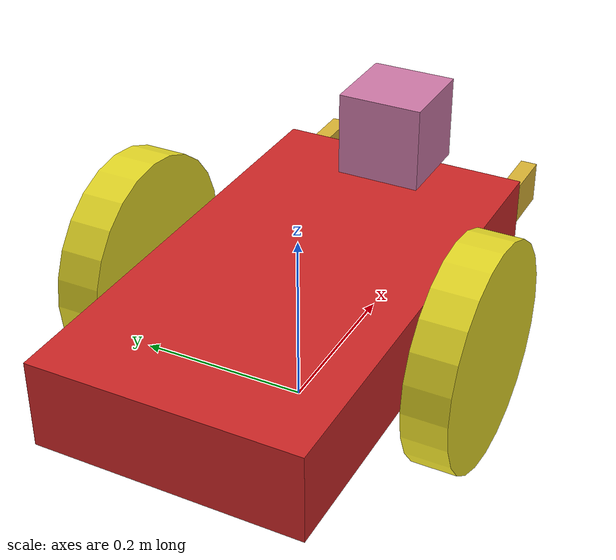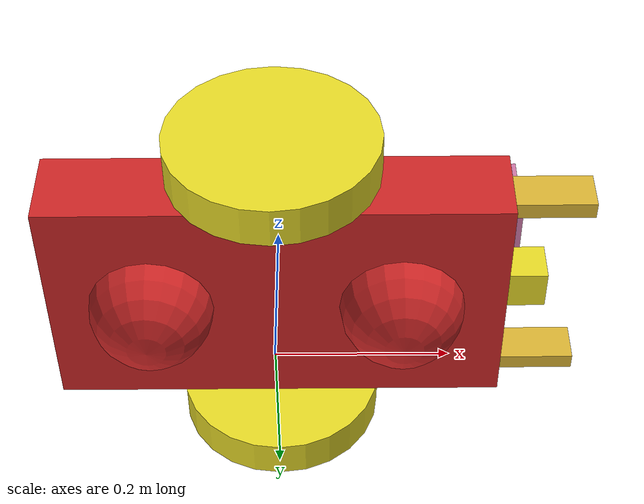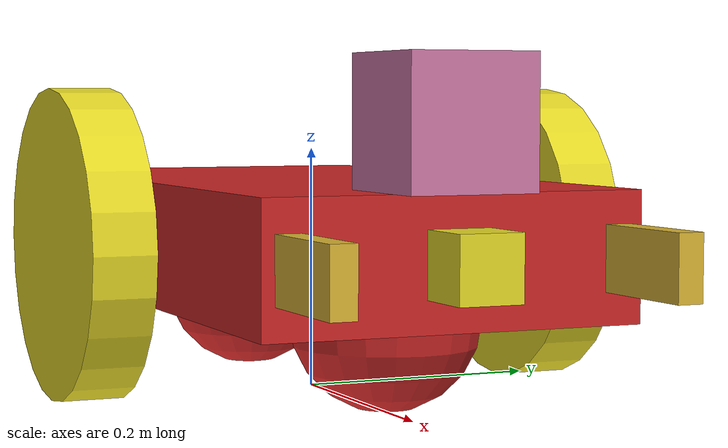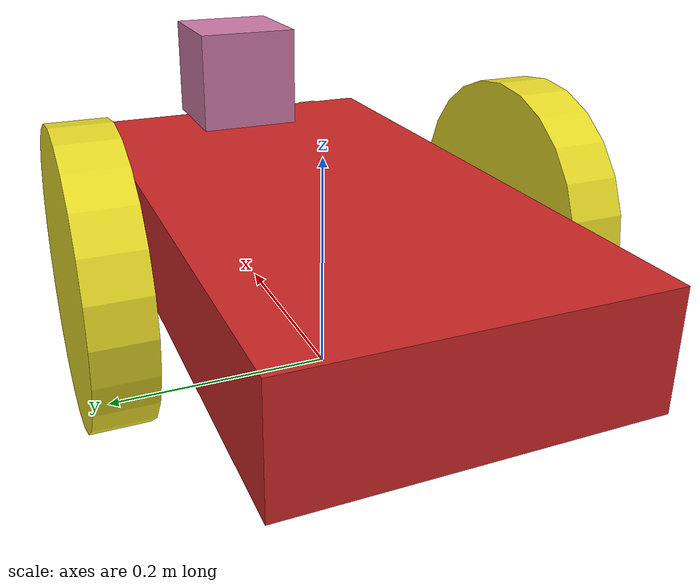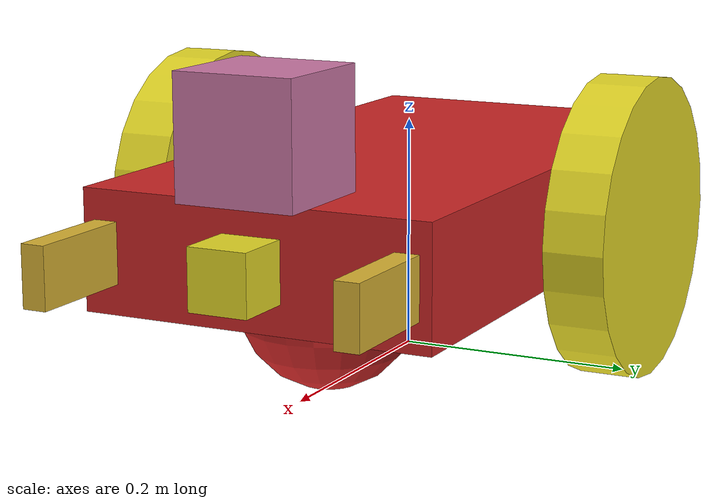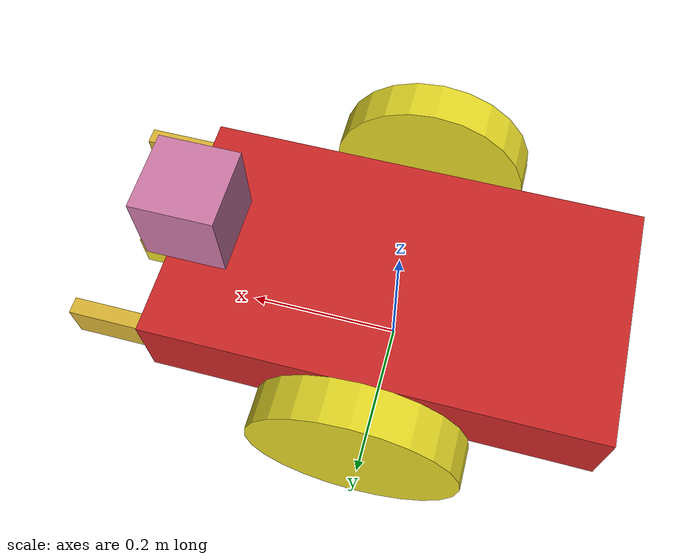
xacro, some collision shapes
<?xml version='1.0'?>

<robot name="my_robot" xmlns:xacro="http://www.ros.org/wiki/xacro">

    <xacro:include filename="$(find my_robot)/urdf/my_robot.gazebo" />

    <gazebo reference="chassis">
        <material>Gazebo/Red</material>
    </gazebo>
    <gazebo reference="left_wheel">
        <material>Gazebo/DarkYellow</material>
    </gazebo>
    <gazebo reference="right_wheel">
        <material>Gazebo/DarkYellow</material>
    </gazebo>
    <gazebo reference="camera">
        <material>Gazebo/DarkYellow</material>
    </gazebo>
    <gazebo reference="left_front_horn">
        <material>Gazebo/Gold</material>
    </gazebo>
    <gazebo reference="right_front_horn">
        <material>Gazebo/Gold</material>
    </gazebo>

    <link name="robot_footprint"></link>

    <joint name="robot_footprint_joint" type="fixed">
        <origin xyz="0 0 0.125" rpy="0 0 0" />
        <parent link="robot_footprint" />
        <child link="chassis" />
    </joint>

    <link name='chassis'>

        <inertial>
            <mass value="15.0" />
            <origin xyz="0 0 0" rpy="0 0 0" />
            <inertia ixx="0.1" ixy="0" ixz="0" iyy="0.1" iyz="0" izz="0.1" />
        </inertial>

        <collision name='collision'>
            <origin xyz="0 0 0" rpy="0 0 0" />
            <geometry>
                <box size=".55 .3 .1" />
            </geometry>
        </collision>

        <visual name='chassis_visual'>
            <origin xyz="0 0 0" rpy="0 0 0" />
            <geometry>
                <box size=".55 .3 .1" />
            </geometry>
        </visual>

        <collision name='back_caster_collision'>
            <origin xyz="-0.15 0 -0.05" rpy=" 0 0 0" />
            <geometry>
                <sphere radius="0.075" />
            </geometry>
        </collision>

        <visual name='back_caster_visual'>
            <origin xyz="-0.15 0 -0.05" rpy=" 0 0 0" />
            <geometry>
                <sphere radius="0.075" />
            </geometry>
        </visual>

        <collision name='front_caster_collision'>
            <origin xyz="0.15 0 -0.05" rpy=" 0 0 0" />
            <geometry>
                <sphere radius="0.075" />
            </geometry>
        </collision>

        <visual name='front_caster_visual'>
            <origin xyz="0.15 0 -0.05" rpy=" 0 0 0" />
            <geometry>
                <sphere radius="0.075" />
            </geometry>
        </visual>

    </link>

    <joint name="left_wheel_hinge" type="continuous">
        <origin xyz="0 0.2 0" rpy="0 0 0" />
        <parent link="chassis" />
        <child link="left_wheel" />
        <axis xyz="0 1 0" rpy="0 0 0" />
        <limit effort="10000" velocity="1000" />
        <dynamic damping="1.0" friction="1.0" />
    </joint>

    <link name="left_wheel">
        <inertial>
            <origin xyz="0 0 0" rpy="0 1.5707 1.5707" />
            <mass value="5.0" />
            <inertia ixx="0.1" ixy="0" ixz="0" iyy="0.1" iyz="0" izz="0.1" />
        </inertial>
        <collision>
            <origin xyz="0 0 0" rpy="0 1.5707 1.5707" />
            <geometry>
                <cylinder radius="0.125" length="0.05" />
            </geometry>
        </collision>
        <visual name="left_wheel_visual">
            <origin xyz="0 0 0" rpy="0 1.5707 1.5707" />
            <geometry>
                <cylinder radius="0.125" length="0.05" />
            </geometry>
        </visual>
    </link>

    <joint name="right_wheel_hinge" type="continuous">
        <origin xyz="0.0 -0.2 0.0" rpy="0.0 0.0 0.0" />
        <parent link="chassis" />
        <child link="right_wheel" />
        <axis xyz="0 1 0" />
        <limit effort="10000" velocity="1000" />
        <dynamic damping="1.0" friction="1.0" />
    </joint>

    <link name="right_wheel">
        <inertial>
            <origin xyz="0.0 0.0 0.0" rpy="0.0 1.5707 1.5707" />
            <mass value="5.0" />
            <inertia ixx="0.1" ixy="0" ixz="0" iyy="0.1" iyz="0" izz="0.1" />
        </inertial>
        <collision>
            <origin xyz="0.0 0.0 0.0" rpy="0.0 1.5707 1.5707" />
            <geometry>
                <cylinder radius="0.125" length="0.05" />
            </geometry>
        </collision>
        <visual name="right_wheel_visual">
            <origin xyz="0.0 0.0 0.0" rpy="0.0 1.5707 1.5707" />
            <geometry>
                <cylinder radius="0.125" length="0.05" />
            </geometry>
        </visual>
    </link>

    <joint name="camera_joint" type="fixed">
        <origin xyz="0.3 0.0 0.0" rpy="0.0 0.0 0.0" />
        <parent link="chassis" />
        <child link="camera" />
        <axis xyz="0 1 0" />
    </joint>

    <link name="camera">
        <inertial>
            <origin xyz="0.05 0.05 0.05" rpy="0.0 0.0 0.0" />
            <mass value="0.1" />
            <inertia ixx="1e-6" ixy="0" ixz="0" iyy="1e-6" iyz="0" izz="1e-6" />
        </inertial>
        <collision>
            <origin xyz="0.0 0.0 0.0" rpy="0.0 0.0 0.0" />
            <geometry>
                <box size="0.05 0.05 0.05" />
            </geometry>
        </collision>
        <visual name="camera_visual">
            <origin xyz="0.0 0.0 0.0" rpy="0.0 0.0 0.0" />
            <geometry>
                <box size="0.05 0.05 0.05" />
            </geometry>
        </visual>
    </link>

    <joint name="camera_optical_joint" type="fixed">
        <origin xyz="0 0 0" rpy="-1.5707 0 -1.5707"/>
        <parent link="camera"/>
        <child link="camera_link_optical"/>
    </joint>

    <link name="camera_link_optical">
    </link>

    <joint name="hokuyo_joint" type="fixed">
        <origin xyz="0.25 0.0 0.1" rpy="0.0 0.0 0.0" />
        <parent link="chassis" />
        <child link="hokuyo" />
        <axis xyz="0 1 0" />
    </joint>

    <link name="hokuyo">
        <inertial>
            <origin xyz="0.0 0.0 0.0" rpy="0.0 0.0 0.0" />
            <mass value="1e-5" />
            <inertia ixx="1e-6" ixy="0.0" ixz="0.0" iyy="1e-6" iyz="0.0" izz="1e-6" />
        </inertial>
        <visual name="hokuyo_visual">
            <origin xyz="0.0 0.0 0.0" rpy="0.0 0.0 0.0" />
            <geometry>
                <mesh filename="package://my_robot/meshes/hokuyo.dae" />
            </geometry>
        </visual>
        <collision>
            <origin xyz="0.0 0.0 0.0" rpy="0.0 0.0 0.0" />
            <geometry>
                <box size="0.1 0.1 0.1" />
            </geometry>
        </collision>
    </link>

    <joint name="left_front_horn_joint" type="fixed">
        <origin xyz="0.27 0.13 0.0" rpy="0.0 0.0 0.0" />
        <parent link="chassis" />
        <child link="left_front_horn" />
        <axis xyz="0 1 0" />
    </joint>

    <link name="left_front_horn">
        <inertial>
            <origin xyz="0.0 0.0 0.0" rpy="0.0 0.0 0.0" />
            <mass value="0.1" />
            <inertia ixx="1e-6" ixy="0" ixz="0" iyy="1e-6" iyz="0" izz="1e-6" />
        </inertial>
        <collision name="left_front_horn_collision">
            <origin xyz="0.0 0.0 0.0" rpy="0.0 0.0 0.0" />
            <geometry>
                <box size="0.2 0.02 0.05" />
            </geometry>
        </collision>
        <visual name="left_front_horn_visual">
            <origin xyz="0.0 0.0 0.0" rpy="0.0 0.0 0.0" />
            <geometry>
                <box size="0.2 0.02 0.05" />
            </geometry>
        </visual>
    </link>

    <joint name="right_front_horn_joint" type="fixed">
        <origin xyz="0.27 -0.13 0.0" rpy="0.0 0.0 0.0" />
        <parent link="chassis" />
        <child link="right_front_horn" />
        <axis xyz="0 1 0" />
    </joint>

    <link name="right_front_horn">
        <inertial>
            <origin xyz="0.0 0.0 0.0" rpy="0.0 0.0 0.0" />
            <mass value="0.1" />
            <inertia ixx="1e-6" ixy="0" ixz="0" iyy="1e-6" iyz="0" izz="1e-6" />
        </inertial>
        <collision name="right_front_horn_collision">
            <origin xyz="0.0 0.0 0.0" rpy="0.0 0.0 0.0" />
            <geometry>
                <box size="0.2 0.02 0.05" />
            </geometry>
        </collision>
        <visual name="right_front_horn_visual">
            <origin xyz="0.0 0.0 0.0" rpy="0.0 0.0 0.0" />
            <geometry>
                <box size="0.2 0.02 0.05" />
            </geometry>
        </visual>
    </link>

</robot>
